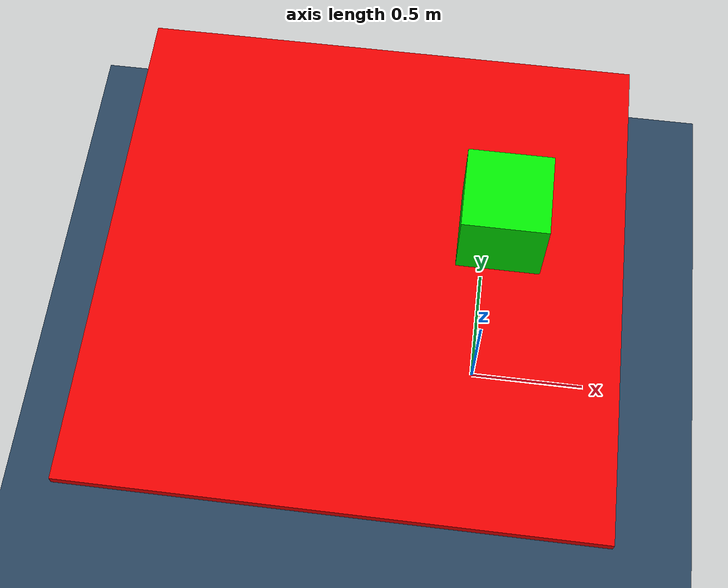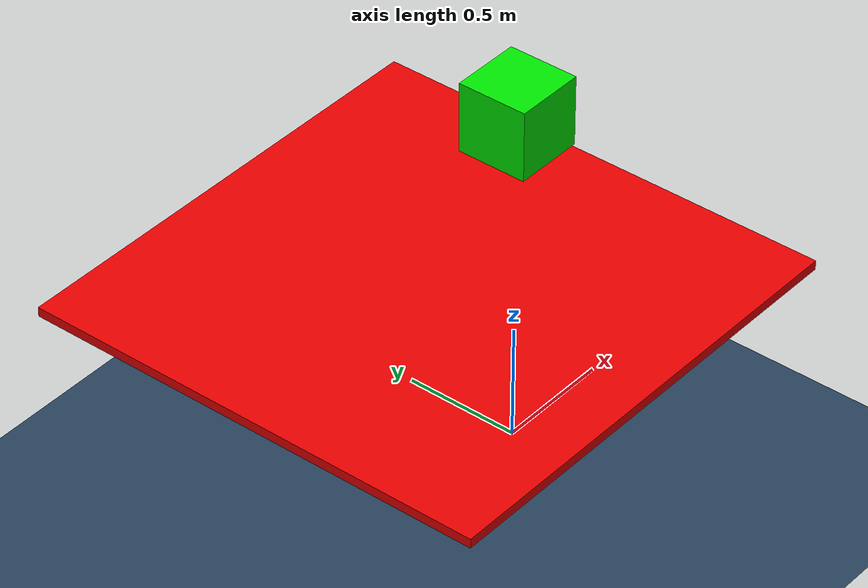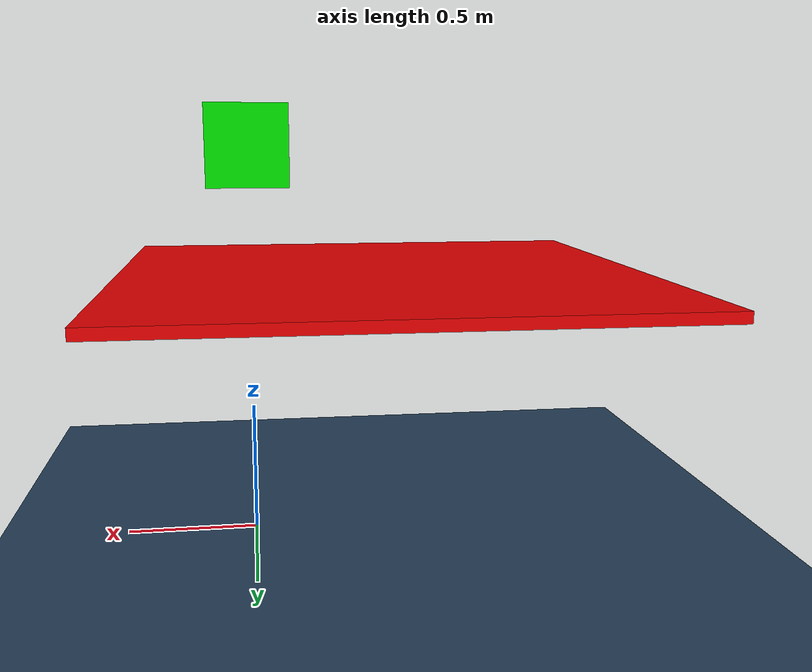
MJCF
<mujoco>
    <option gravity="0 0 -9.81" integrator="RK4">
        <flag contact="enable" />
    </option>
    <asset>
        <texture name="grid" type="2d" builtin="checker" width="512" height="512" rgb1=".1 .2 .3" rgb2=".2 .3 .4"/>
        <material name="grid" texture="grid" texrepeat="30 30" reflectance=".2"/>
        <texture name="wood" type="2d" file="wood.png" />
        <material name="wood" texture="wood"/>
    </asset>
    <worldbody>
        <light diffuse=".8 .8 .8" pos="0 0 5" dir="0 0 -1"/>
        <geom name="ground" pos="0 0 0" type="plane" size="5 5 .01" material="grid" friction="0.2 0.2 0.2"/>
        <body name="object" pos="0.0 0 1.5">
            <joint type="free"/>
            <geom type="box" size=".15 .15 .15" rgba="0 .9 0 1" friction="0.2 0.2 0.2" mass="2.0"/>
        </body>
        <body name="tool" pos="-0.5 0 1.0">
            <joint type="slide" axis="1 0 0" name="tool_x"/>
            <joint type="slide" axis="0 1 0" name="tool_y"/>
            <geom type="box" size="1.0 1.0 .02" rgba="0.9 0 0 1" friction="0.2 0.2 0.2"/>
        </body>
    </worldbody>
    <actuator>
        <position joint="tool_x" name="act_tool_x" kp="100"/>
        <position joint="tool_y" name="act_tool_y" kp="100"/>
    </actuator>
</mujoco>
